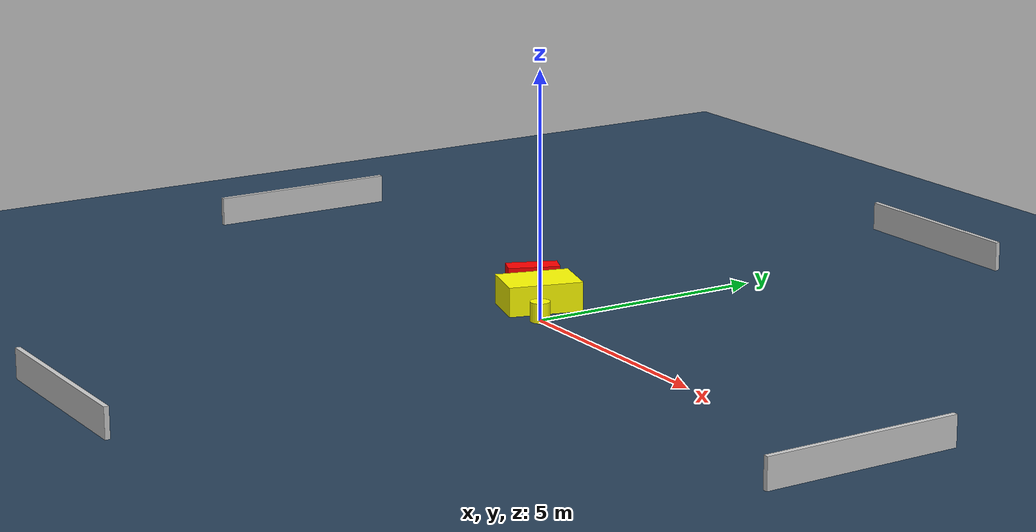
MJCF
<?xml version="1.0" ?>
<mujoco model="generated_environment">
  <option timestep="0.01" integrator="RK4" cone="elliptic"/>
  <default>
    <geom density="1"/>
  </default>
  <asset>
    <texture builtin="gradient" height="3072" name="skybox" rgb1="0.3 0.5 0.7" rgb2="0 0 0" type="skybox" width="512"/>
    <texture builtin="checker" height="300" name="groundplane" rgb1="0.2 0.3 0.4" rgb2="0.1 0.2 0.3" type="2d" width="300"/>
    <material name="groundplane" reflectance="0.2" texrepeat="5 5" texture="groundplane"/>
  </asset>
  <worldbody>
    <light dir="0 0 -1" directional="true" pos="0 0 1.5"/>
    <geom condim="3" friction="0.5 0.005 0.001" material="groundplane" name="floor" pos="0 0 0" size="0 0 0.05" type="plane"/>
    <body name="walls">
      <geom name="wall_1" condim="4" pos="-10.0 0.0 0.3" rgba="0.800000011920929 0.800000011920929 0.800000011920929 1.0" size="0.05 2.0 0.3" type="box"/>
      <geom name="wall_2" condim="4" pos="10.0 0.0 0.3" rgba="0.800000011920929 0.800000011920929 0.800000011920929 1.0" size="0.05 2.0 0.3" type="box"/>
      <geom name="wall_3" condim="4" pos="0.0 -10.0 0.3" rgba="0.800000011920929 0.800000011920929 0.800000011920929 1.0" size="2.0 0.05 0.3" type="box"/>
      <geom name="wall_4" condim="4" pos="0.0 10.0 0.3" rgba="0.800000011920929 0.800000011920929 0.800000011920929 1.0" size="2.0 0.05 0.3" type="box"/>
    </body>
    <body name="robot">
      <joint name="joint_x" type="slide" pos="0 0 0" axis="1 0 0"/>
      <joint name="joint_y" type="slide" pos="0 0 0" axis="0 1 0"/>
      <geom name="robot" type="cylinder" pos="0.0 0.0 0.2" size="0.2 0.2 0.0" mass="5.0" friction="1.0 0.005 0.0001" condim="4" rgba="1.0 1.0 0.0 1.0"/>
    </body>
    <body name="obstacle_1_movable">
      <geom name="obstacle_1_movable" condim="4" pos="-0.8129646950524183 0.4855071007259666 0.3" euler="0 0 164.3871875845229" friction="0.0 0.005 0.001" rgba="1.0 1.0 0.0 1.0" size="0.5216276061491254 0.7605310467245534 0.3" type="box" mass="0.1"/>
      <joint type="free"/>
    </body>
    <body name="obstacle_2_static">
      <geom name="obstacle_2_static" condim="4" pos="-1.7307425832331582 0.9140310466918724 0.3" euler="0 0 156.77815061713568" friction="0.0 0.005 0.001" rgba="1.0 0.0 0.0 1.0" size="0.21874682604005494 0.5317623311867399 0.3" type="box"/>
    </body>
  </worldbody>
  <actuator>
    <motor name="actuator_x" joint="joint_x" gear="1" ctrlrange="-1 1"/>
    <motor name="actuator_y" joint="joint_y" gear="1" ctrlrange="-1 1"/>
  </actuator>
</mujoco>
